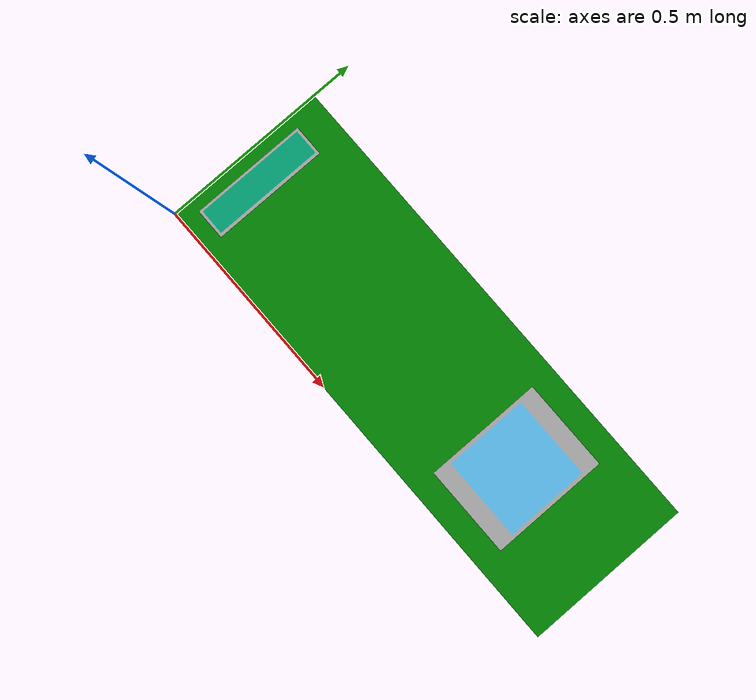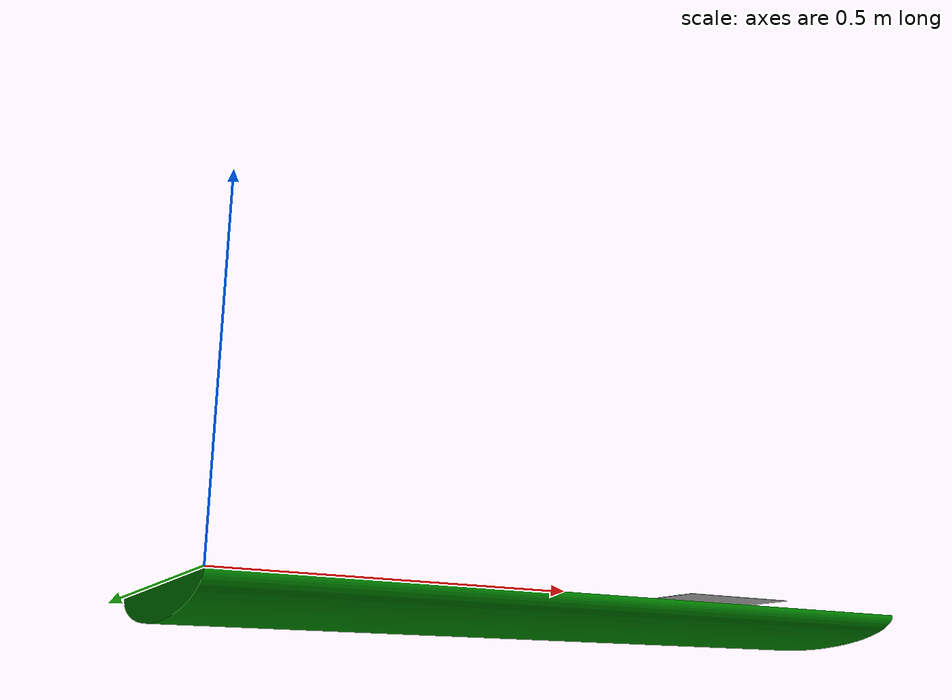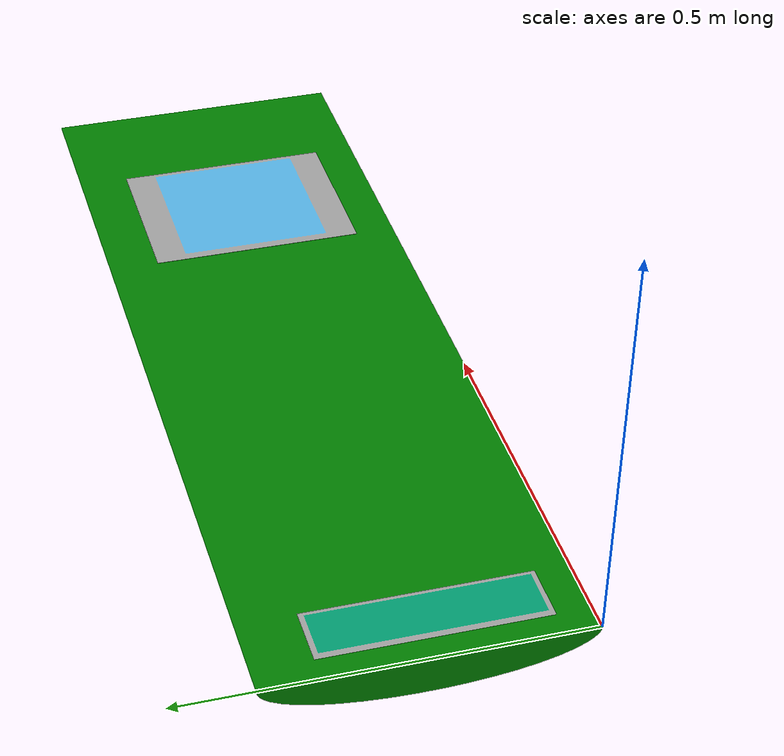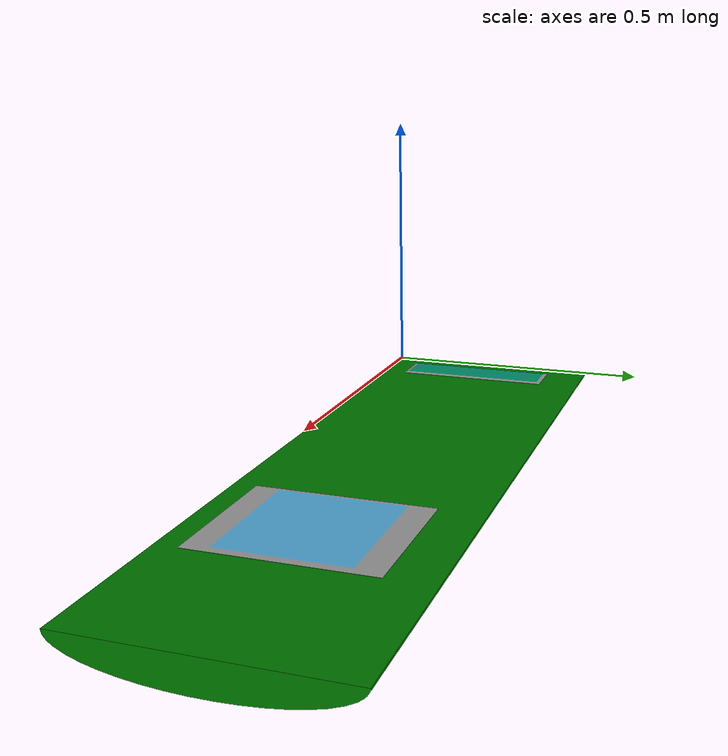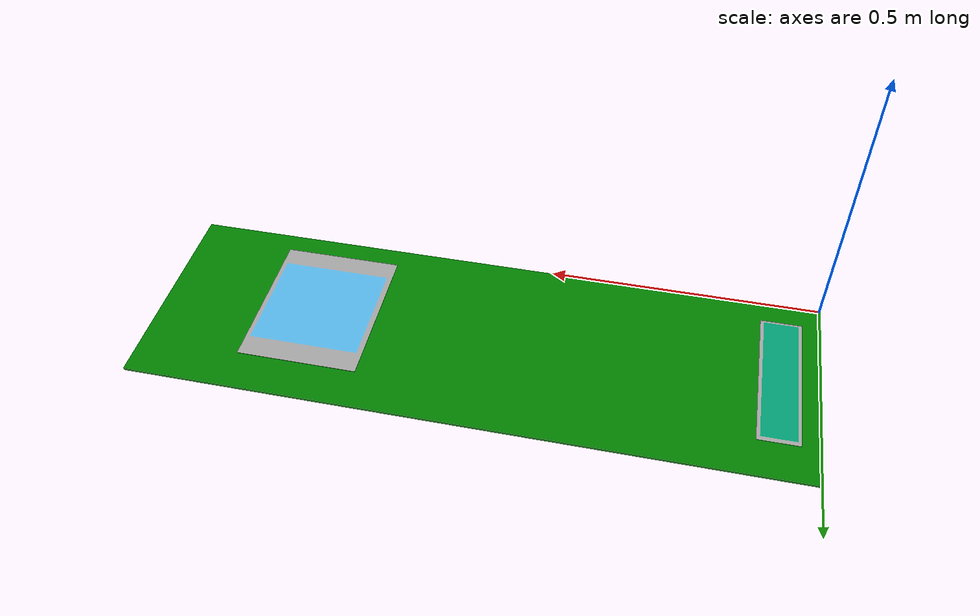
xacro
<robot name="payloads" xmlns:xacro="http://ros.org/wiki/xacro">
<xacro:arg name="payload_extensions" default="false" />
<link name="payload2">
  <visual name="visual">
    <origin xyz="0 0 -0.05"/>
    <geometry><mesh filename="package://industrial_payload_manager/test/meshes/payload2.stl"/></geometry>
    <material name="payload">
      <color rgba="0 0.5 0 1"/>
    </material>
  </visual>
  <collision name="collision">
    <origin xyz="0 0 -0.05"/>
    <geometry><mesh filename="package://industrial_payload_manager/test/meshes/payload2.stl"/></geometry>
  </collision>
</link>
<link name="payload2_marker_5">
  <visual name="visual">
  <origin rpy="0 0 0" xyz="0.1 0.1 0"/>
  <geometry><mesh filename="package://industrial_payload_manager/test/meshes/markers/artag_5678.dae"/></geometry>
  </visual>
  <xacro:if value="$(arg payload_extensions)">
    <aruco_marker>
      <gridboard markersX="2" markersY="2" markerLength="0.0972" markerSpacing="0.005" dictionary="DICT_6X6_250" firstMarker="5"/>
    </aruco_marker>
  </xacro:if>
</link>
<link name="payload2_marker_9">
  <visual name="visual">
  <origin rpy="0 0 0" xyz="0.135 0.031 0"/>
  <geometry><mesh filename="package://industrial_payload_manager/test/meshes/markers/artag_9_10_11_12.dae"/></geometry>
  </visual>
  <xacro:if value="$(arg payload_extensions)">
    <aruco_marker>
      <gridboard markersX="4" markersY="1" markerLength=".062" markerSpacing=".0074" dictionary="DICT_6X6_250" firstMarker="9"/>
    </aruco_marker>
  </xacro:if>
</link>
<link name="payload2_gripper_target">
  <xacro:if value="$(arg payload_extensions)">
    <gripper_ft_threshold>
      <pickup ft="250 250 250 250 250 250"/>
      <place ft="500 500 500 500 500 500"/>
    </gripper_ft_threshold>
  </xacro:if>
</link>

<joint name="payload2_marker_5_j" type="fixed">
  <parent link="payload2"/>
  <child link="payload2_marker_5"/>
  <origin xyz="1 0.3 0.02" rpy="0 0 ${radians(180)}"/>
</joint>

<joint name="payload2_gripper_target_j" type="fixed">
  <parent link="payload2"/>
  <child link="payload2_gripper_target"/>
  <origin xyz="0.6 0.2 0" rpy="${radians(180)} ${radians(5)} ${radians(-90)}"/>
</joint>

<joint name="payload2_maker_9_j" type="fixed">
  <parent link="payload2"/>
  <child link="payload2_marker_9"/>
  <origin xyz="0.1 0.05 0" rpy="0 0 ${radians(90)}"/>
</joint>

</robot>
